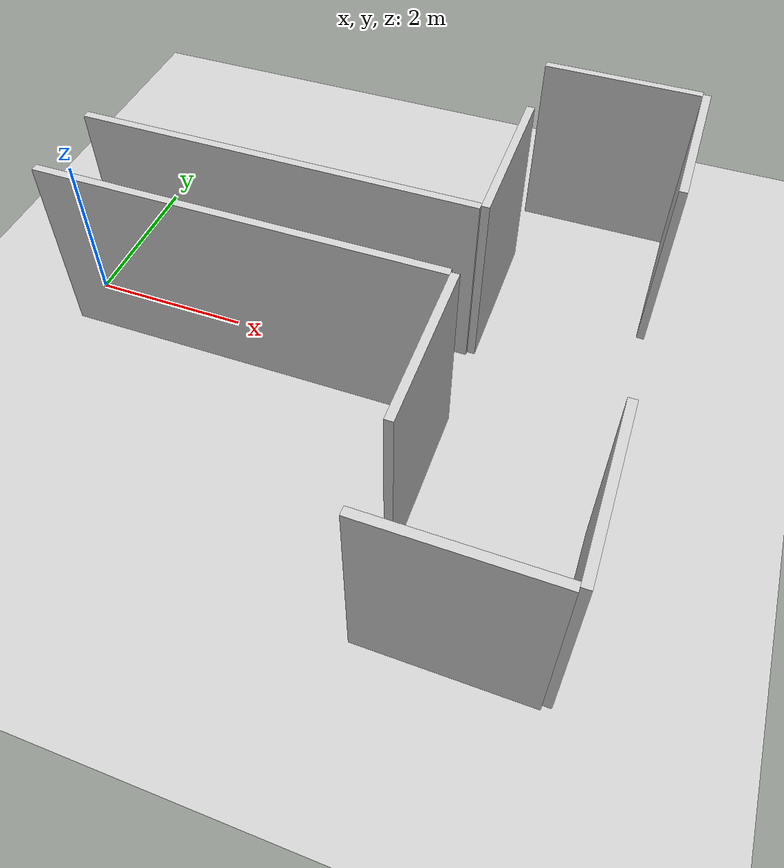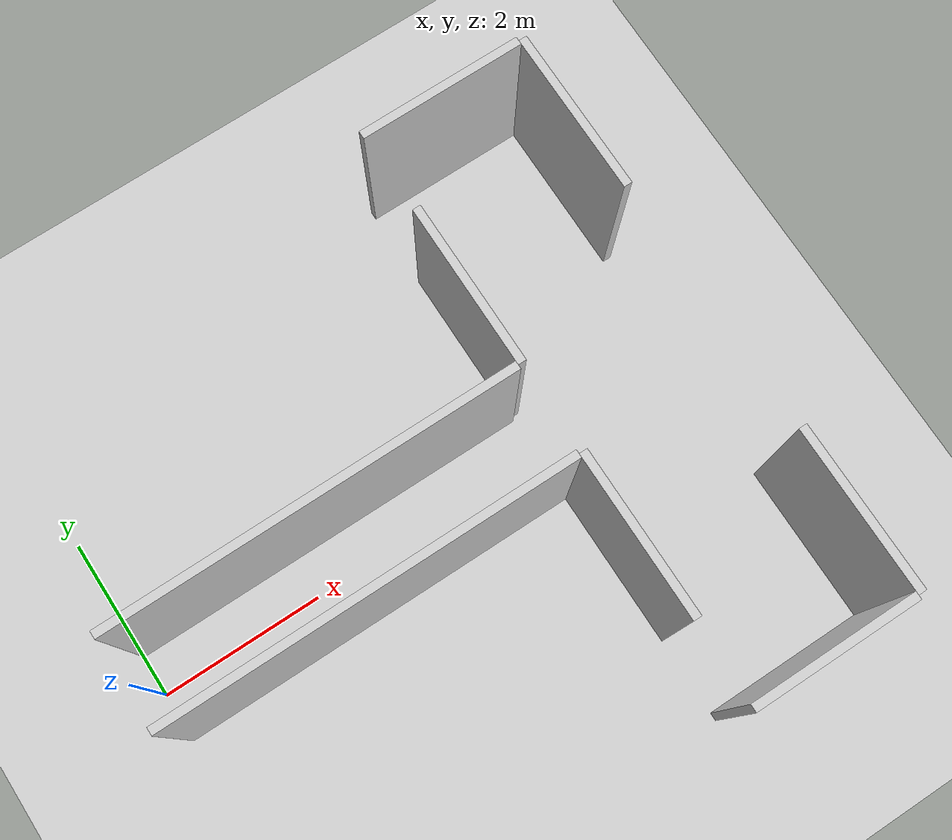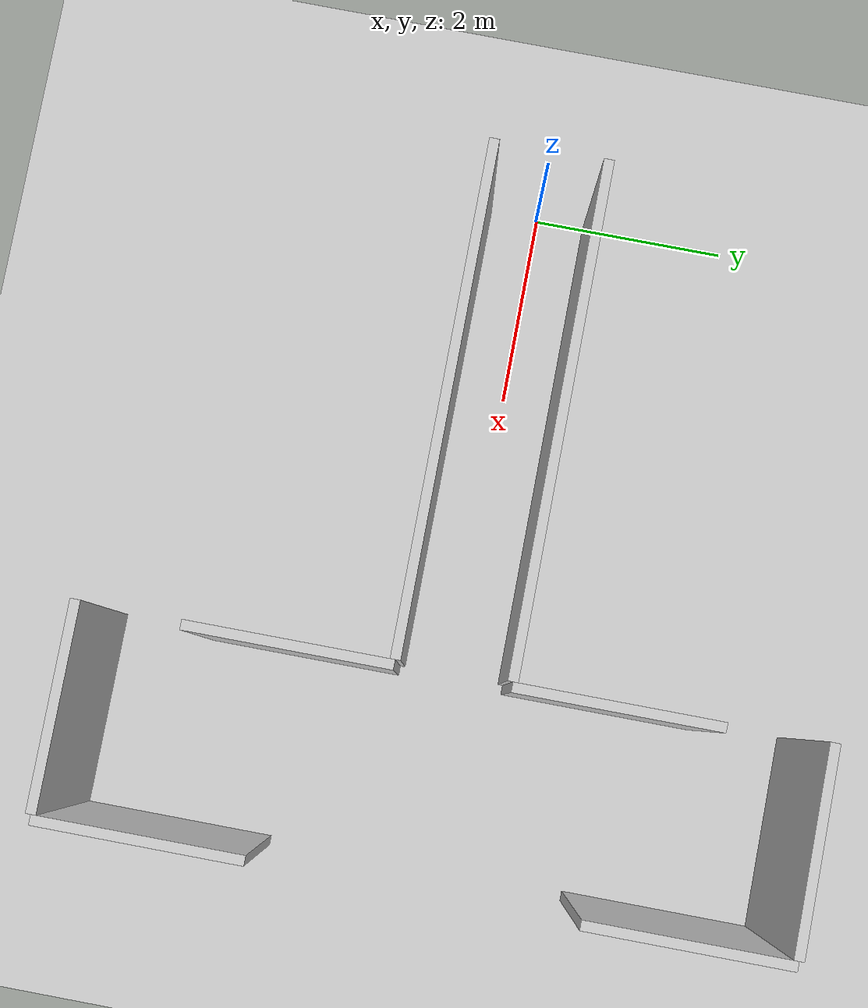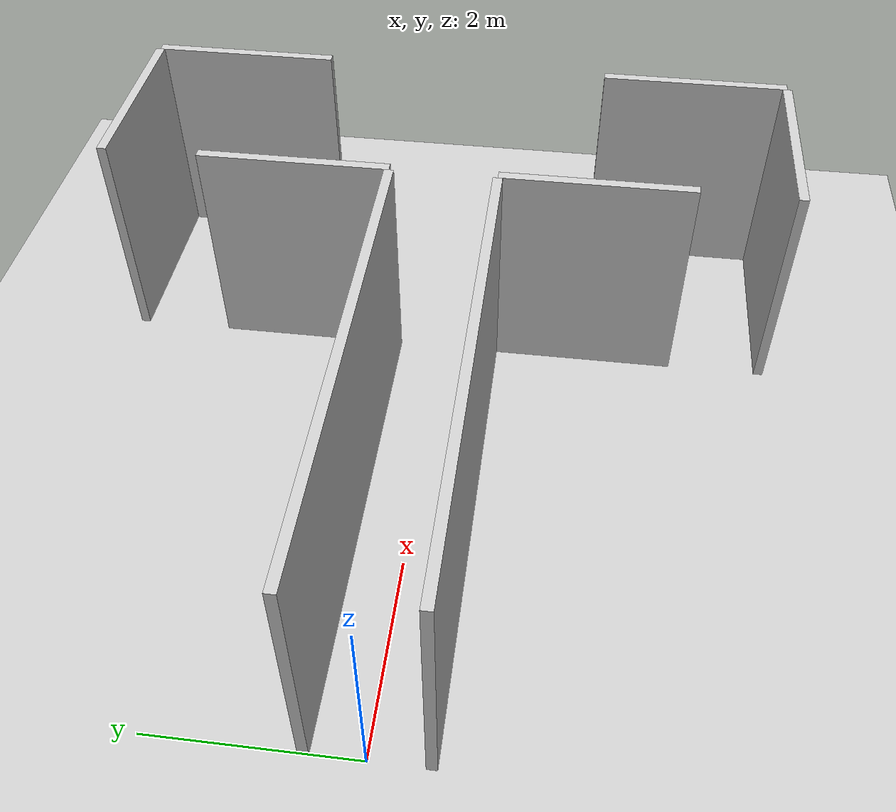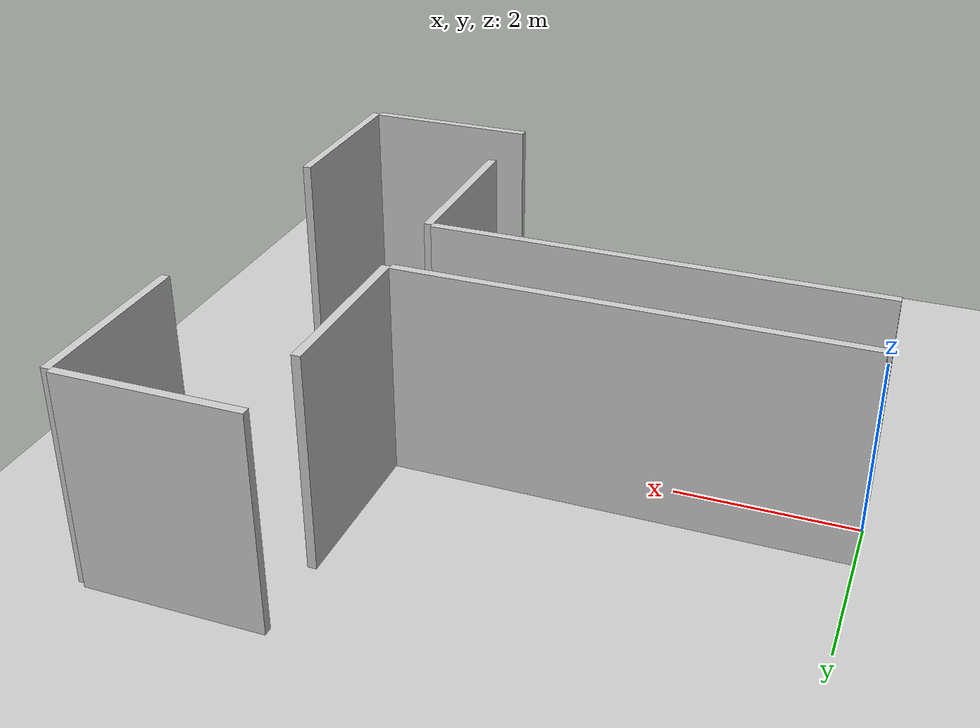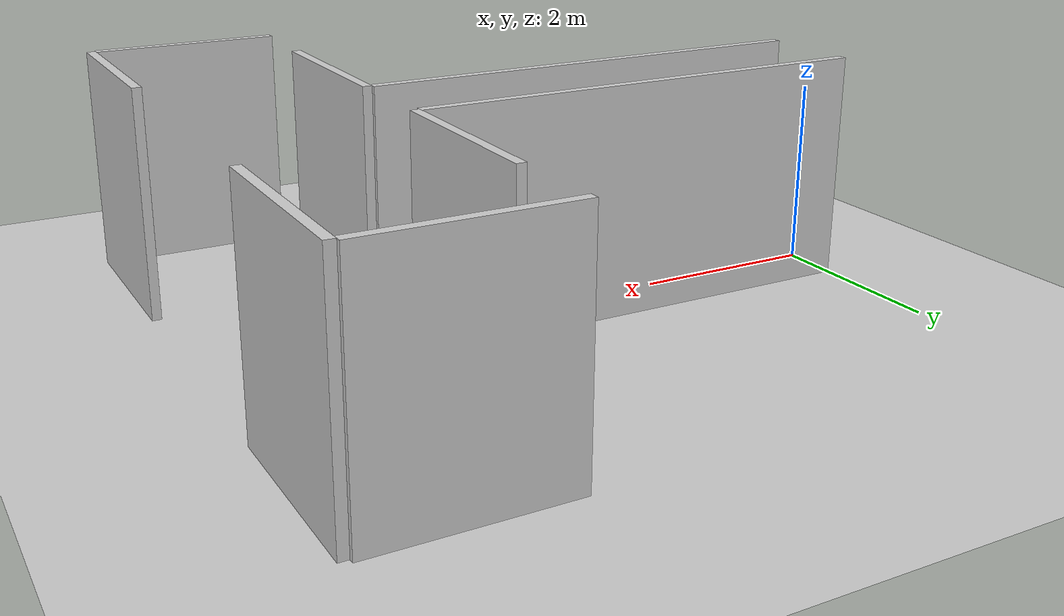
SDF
<?xml version="1.0" encoding="UTF-8"?>
<sdf version="1.9">
  <world name="nidar_arena">
    <light type="directional" name="sun">
      <cast_shadows>true</cast_shadows>
      <pose>0 0 10 0 0 0</pose>
      <diffuse>0.9 0.9 0.9 1</diffuse>
      <specular>0.2 0.2 0.2 1</specular>
      <direction>-0.5 0.1 -0.9</direction>
    </light>

    <physics type="ode">
      <max_step_size>0.004</max_step_size>
      <real_time_factor>1.0</real_time_factor>
      <real_time_update_rate>250</real_time_update_rate>
    </physics>
    <gravity>0 0 -9.8</gravity>
    <magnetic_field>6e-06 2.3e-05 -4.2e-05</magnetic_field>
    <atmosphere type="adiabatic"/>
    <scene>
      <grid>false</grid>
      <ambient>0.4 0.4 0.4 1</ambient>
      <background>0.7 0.7 0.7 1</background>
      <shadows>true</shadows>
    </scene>
    <model name="ground_plane">
      <static>true</static>
      <link name="link">
        <collision name="collision">
          <geometry>
            <plane>
              <normal>0 0 1</normal>
              <size>1 1</size>
            </plane>
          </geometry>
          <surface>
            <friction>
              <ode/>
            </friction>
            <bounce/>
            <contact/>
          </surface>
        </collision>
        <visual name="visual">
          <geometry>
            <plane>
              <normal>0 0 1</normal>
              <size>500 500</size>
            </plane>
          </geometry>
          <material>
            <ambient>0.8 0.8 0.8 1</ambient>
            <diffuse>0.8 0.8 0.8 1</diffuse>
            <specular>0.8 0.8 0.8 1</specular>
          </material>
        </visual>
        <pose>0 0 0 0 -0 0</pose>
        <inertial>
          <pose>0 0 0 0 -0 0</pose>
          <mass>1</mass>
          <inertia>
            <ixx>1</ixx>
            <ixy>0</ixy>
            <ixz>0</ixz>
            <iyy>1</iyy>
            <iyz>0</iyz>
            <izz>1</izz>
          </inertia>
        </inertial>
        <enable_wind>false</enable_wind>
      </link>
      <pose>0 0 0 0 -0 0</pose>
      <self_collide>false</self_collide>
    </model>
    <light name="sunUTC" type="directional">
      <pose>0 0 500 0 -0 0</pose>
      <cast_shadows>true</cast_shadows>
      <intensity>1</intensity>
      <direction>0.001 0.625 -0.78</direction>
      <diffuse>0.904 0.904 0.904 1</diffuse>
      <specular>0.271 0.271 0.271 1</specular>
      <attenuation>
        <range>2000</range>
        <linear>0</linear>
        <constant>1</constant>
        <quadratic>0</quadratic>
      </attenuation>
      <spot>
        <inner_angle>0</inner_angle>
        <outer_angle>0</outer_angle>
        <falloff>0</falloff>
      </spot>
    </light>
    <spherical_coordinates>
      <surface_model>EARTH_WGS84</surface_model>
      <world_frame_orientation>ENU</world_frame_orientation>
      <latitude_deg>47.397971057728974</latitude_deg>
      <longitude_deg> 8.546163739800146</longitude_deg>
      <elevation>0</elevation>
    </spherical_coordinates>
  <model name="wall_entry_north"><static>true</static>
      <link name="link"><pose>2.5 0.55 1.22 0 0 0</pose>
        <collision name="c"><geometry><box><size>5 0.1 2.44</size></box></geometry></collision>
        <visual name="v"><geometry><box><size>5 0.1 2.44</size></box></geometry>
          <material><ambient>0.8 0.8 0.8 1</ambient></material></visual>
      </link>
    </model>
    <model name="wall_entry_south"><static>true</static>
      <link name="link"><pose>2.5 -0.55 1.22 0 0 0</pose>
        <collision name="c"><geometry><box><size>5 0.1 2.44</size></box></geometry></collision>
        <visual name="v"><geometry><box><size>5 0.1 2.44</size></box></geometry>
          <material><ambient>0.8 0.8 0.8 1</ambient></material></visual>
      </link>
    </model>

    <!-- Junction at x=5..6, opens into Room A (+Y) and Room B (-Y) -->
    <model name="wall_junction_north_stub"><static>true</static>
      <link name="link"><pose>5.05 1.55 1.22 0 0 0</pose>
        <collision name="c"><geometry><box><size>0.1 2 2.44</size></box></geometry></collision>
        <visual name="v"><geometry><box><size>0.1 2 2.44</size></box></geometry>
          <material><ambient>0.8 0.8 0.8 1</ambient></material></visual>
      </link>
    </model>
    <model name="wall_junction_south_stub"><static>true</static>
      <link name="link"><pose>5.05 -1.55 1.22 0 0 0</pose>
        <collision name="c"><geometry><box><size>0.1 2 2.44</size></box></geometry></collision>
        <visual name="v"><geometry><box><size>0.1 2 2.44</size></box></geometry>
          <material><ambient>0.8 0.8 0.8 1</ambient></material></visual>
      </link>
    </model>

    <!-- Room A: 2x2m, centered (6, 2.55) -->
    <model name="roomA_far"><static>true</static>
      <link name="link"><pose>7.05 2.55 1.22 0 0 0</pose>
        <collision name="c"><geometry><box><size>0.1 2 2.44</size></box></geometry></collision>
        <visual name="v"><geometry><box><size>0.1 2 2.44</size></box></geometry>
          <material><ambient>0.8 0.8 0.8 1</ambient></material></visual>
      </link>
    </model>
    <model name="roomA_far_wall"><static>true</static>
      <link name="link"><pose>6 3.55 1.22 0 0 0</pose>
        <collision name="c"><geometry><box><size>2 0.1 2.44</size></box></geometry></collision>
        <visual name="v"><geometry><box><size>2 0.1 2.44</size></box></geometry>
          <material><ambient>0.8 0.8 0.8 1</ambient></material></visual>
      </link>
    </model>

    <!-- Room B: mirror of Room A on -Y side -->
    <model name="roomB_far"><static>true</static>
      <link name="link"><pose>7.05 -2.55 1.22 0 0 0</pose>
        <collision name="c"><geometry><box><size>0.1 2 2.44</size></box></geometry></collision>
        <visual name="v"><geometry><box><size>0.1 2 2.44</size></box></geometry>
          <material><ambient>0.8 0.8 0.8 1</ambient></material></visual>
      </link>
    </model>
    <model name="roomB_far_wall"><static>true</static>
      <link name="link"><pose>6 -3.55 1.22 0 0 0</pose>
        <collision name="c"><geometry><box><size>2 0.1 2.44</size></box></geometry></collision>
        <visual name="v"><geometry><box><size>2 0.1 2.44</size></box></geometry>
          <material><ambient>0.8 0.8 0.8 1</ambient></material></visual>
      </link>
    </model>

  </world>
</sdf>
